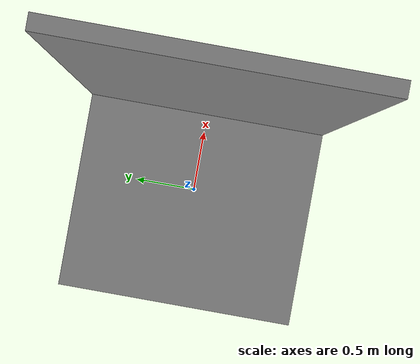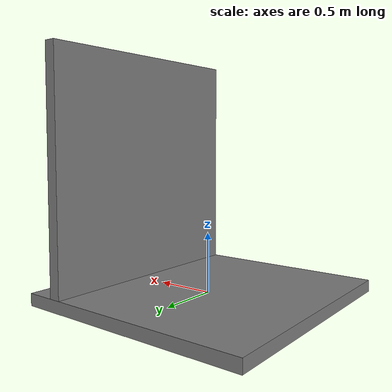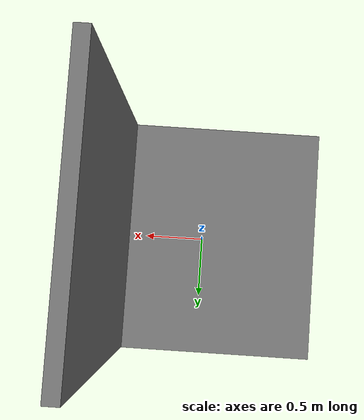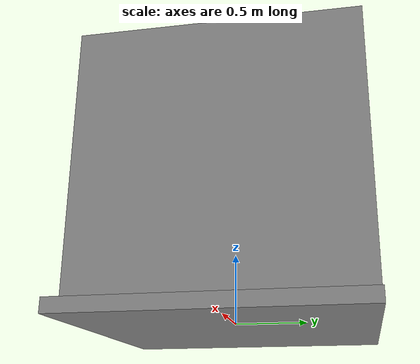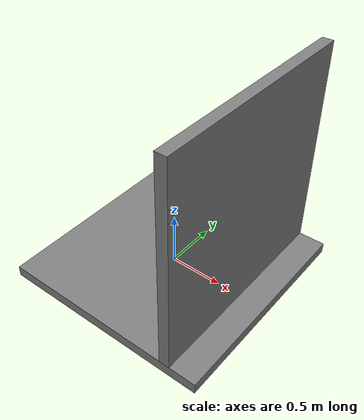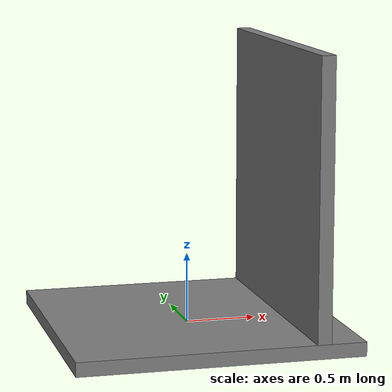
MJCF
<mujoco model="ant">
  <worldbody>
    <body name="floor" pos="0 0 0">
      <geom name="floor" pos="0 0 0" size="1 1 0.05" type="box"/>
    </body>
    <body name="wall" pos="0.7 0 1">
      <geom name="wall" pos="0 0 0" size="0.05 1 1" type="box"/>
    </body>
  </worldbody>
</mujoco>
